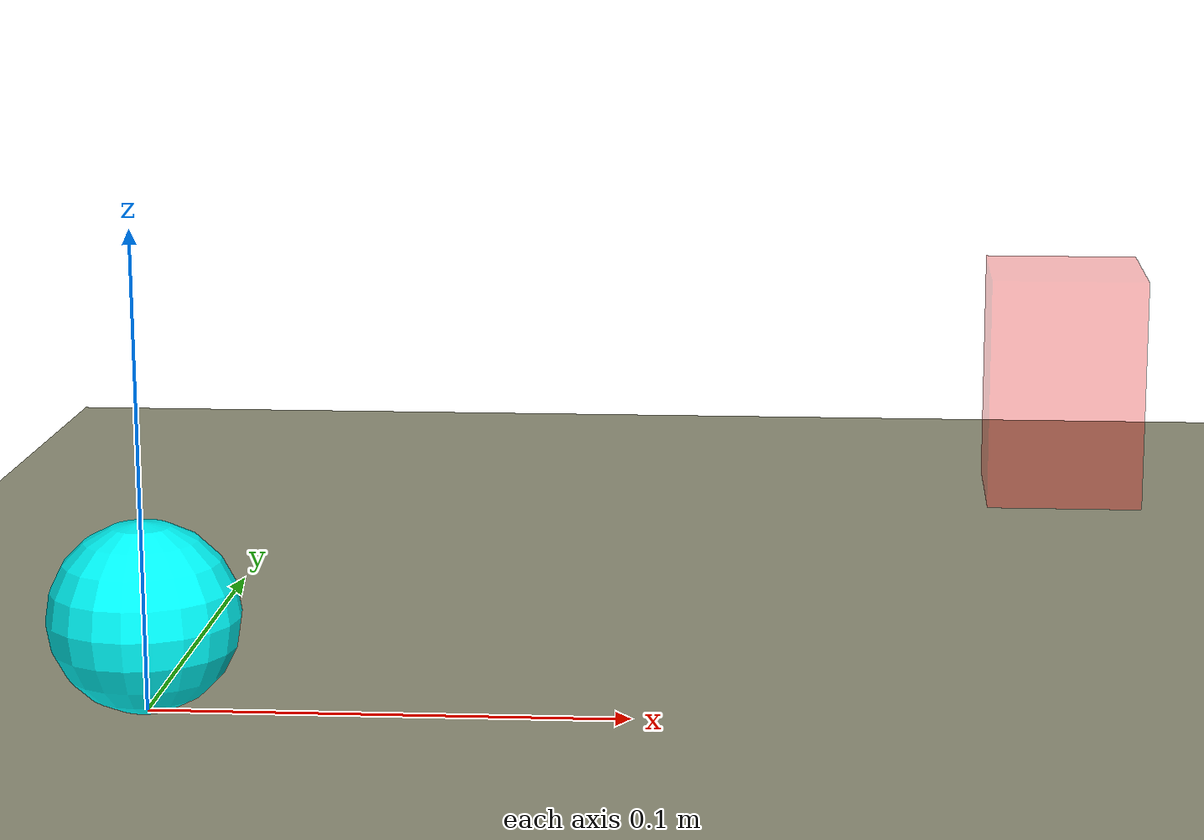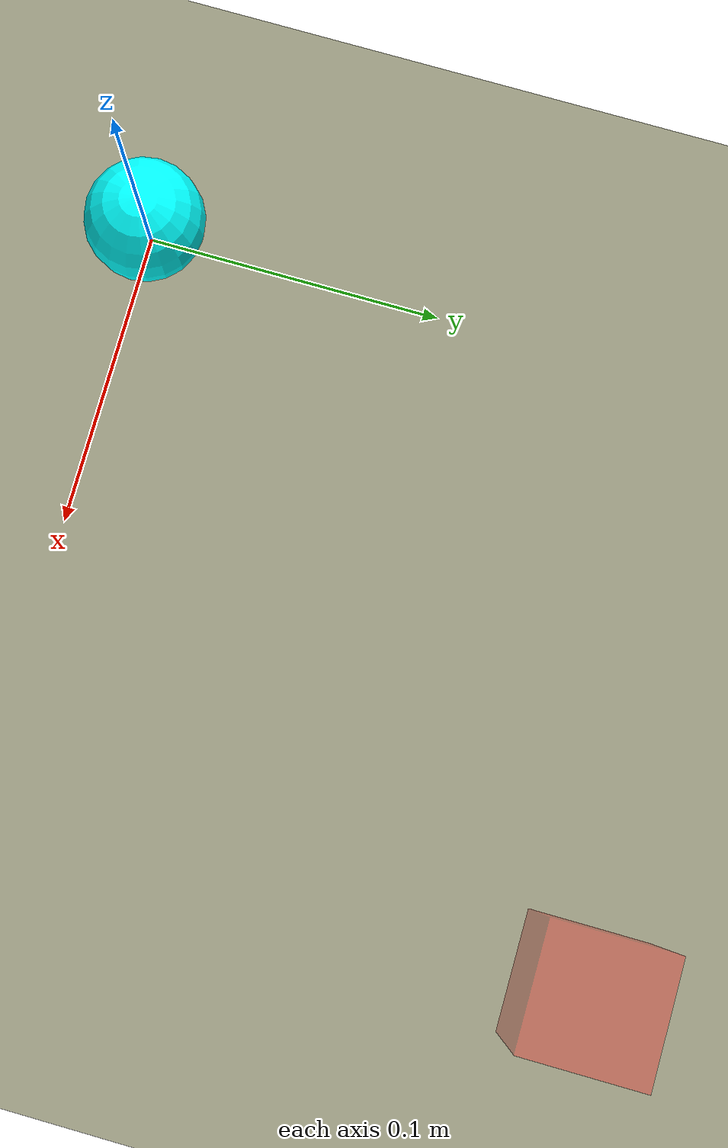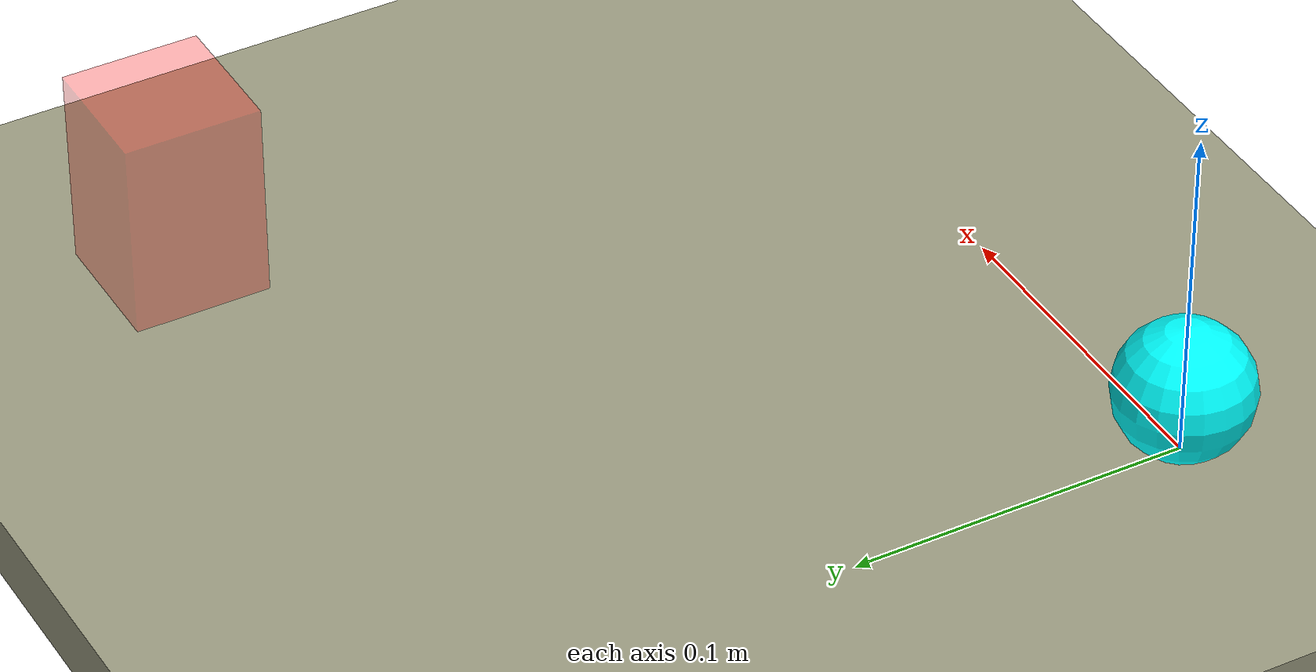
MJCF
<mujoco model="box">
	<compiler inertiafromgeom="true" angle="degree" coordinate="local"/>
  <option timestep='0.01'/>
	<worldbody>

    <geom name="tableTop" type="box" pos="0 0 -0.01" size="15 15 0.01"
          rgba=".6 .6 .5 1" contype="1" conaffinity="1" />
    <body name="point" pos="0 0 0">
      <joint name='pointx' type='slide' axis='1 0 0' pos='0 0 0' range='-20 20' damping='0.1' armature='0' stiffness='0'/>
      <joint name='pointy' type='slide' axis='0 1 0' pos='0 0 0' range='-20 20' damping='0.1' armature='0' stiffness='0'/>
		  <geom type="sphere" size="0.02" pos="0 0 0.02" rgba="0 1 1 1" />
    </body>

    <site name="goal" pos="0.2 0.2 0.03" size="0.02 0.02 0.03" type="box"
              rgba="1 0 0 0.3"/>

	</worldbody>

  <actuator>
     <motor  joint='pointx' gear='10' />
     <motor  joint='pointy' gear='10' />
  </actuator>

</mujoco>
